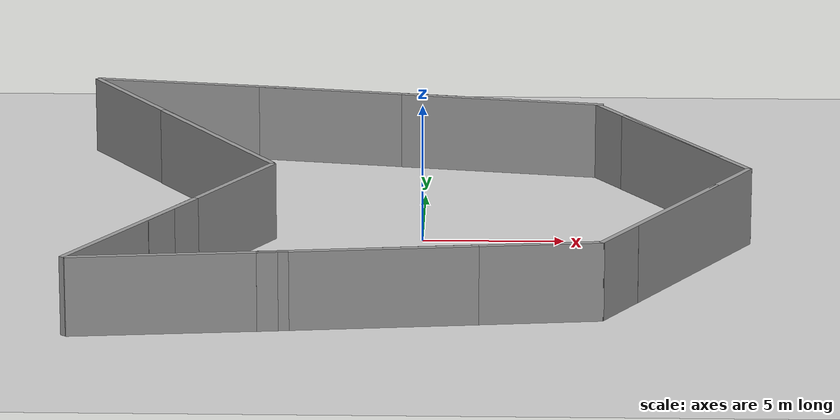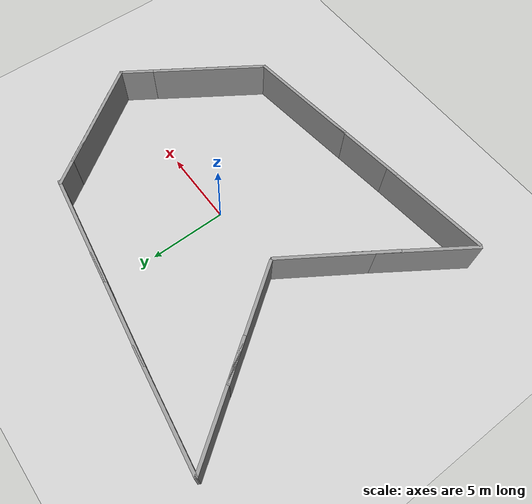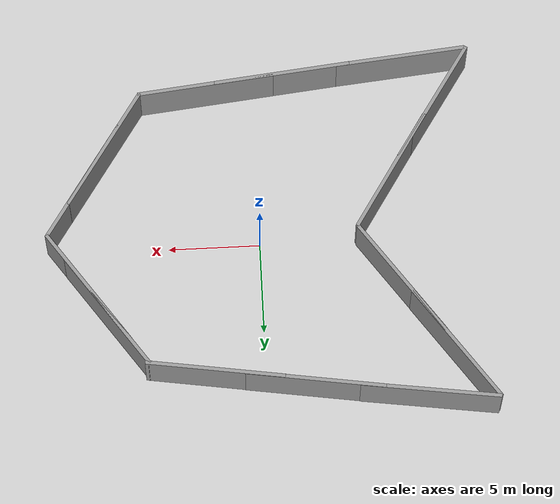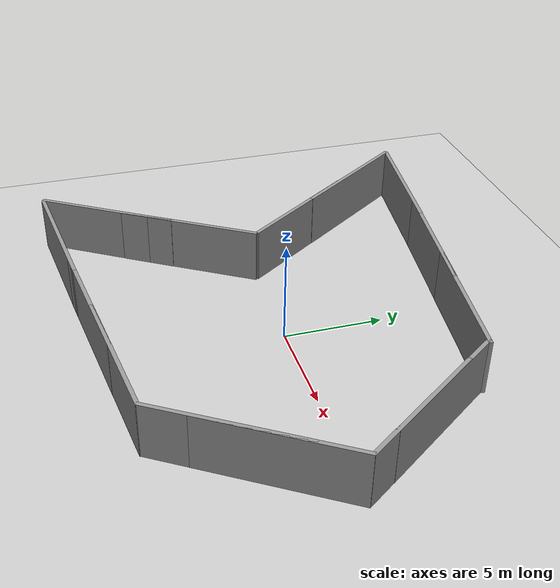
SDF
<sdf version="1.7">
 <world name="default">
  <light name="sun" type="directional">
   <pose>0 0 10 0 -0 0</pose>
   <diffuse>0.8 0.8 0.8 1</diffuse>
   <specular>0.1 0.1 0.1 1</specular>
   <attenuation>
    <range>1000</range>
    <constant>0.9</constant>
    <linear>0.01</linear>
    <quadratic>0.001</quadratic>
   </attenuation>
   <direction>-0.5 0.5 -1</direction>
   <spot><inner_angle>0</inner_angle><outer_angle>0</outer_angle><falloff>0</falloff></spot>
  </light>
  <model name="ground_plane">
   <static>1</static>
   <link name="link">
    <collision name="collision">
     <geometry><plane><normal>0 0 1</normal><size>100 100</size></plane></geometry>
     <surface><friction><ode><mu>100</mu><mu2>50</mu2></ode></friction></surface>
    </collision>
    <visual name="visual">
     <cast_shadows>0</cast_shadows>
     <geometry><plane><normal>0 0 1</normal><size>100 100</size></plane></geometry>
     <material>
      <script><uri>file://media/materials/scripts/gazebo.material</uri><name>Gazebo/Grey</name></script>
     </material>
    </visual>
   </link>
  </model>
  <gravity>0 0 -9.8</gravity>
  <magnetic_field>6e-06 2.3e-05 -4.2e-05</magnetic_field>
  <atmosphere type="adiabatic"/>
  <physics name="default_physics" default="0" type="ode">
   <max_step_size>0.001</max_step_size>
   <real_time_factor>1</real_time_factor>
   <real_time_update_rate>1000</real_time_update_rate>
  </physics>
  <scene><ambient>0.4 0.4 0.4 1</ambient><background>0.7 0.7 0.7 1</background><shadows>1</shadows></scene>
  <spherical_coordinates>
   <surface_model>EARTH_WGS84</surface_model>
   <latitude_deg>0</latitude_deg>
   <longitude_deg>0</longitude_deg>
   <elevation>0</elevation>
   <heading_deg>0</heading_deg>
  </spherical_coordinates>
  <audio><device>default</device></audio>
  <model name="grey_wall">
   <static>1</static>
   <link name="link">
    <pose>0 0 1.4 0 -0 0</pose>
    <collision name="collision"><geometry><box><size>7.5 0.2 2.8</size></box></geometry></collision>
    <visual name="visual">
     <cast_shadows>0</cast_shadows>
     <geometry><box><size>7.5 0.2 2.8</size></box></geometry>
     <material>
      <script>
       <uri>model://grey_wall/materials/scripts</uri>
       <uri>model://grey_wall/materials/textures</uri>
       <name>vrc/grey_wall</name>
      </script>
     </material>
    </visual>
   </link>
   <pose>-7.2846 -3.05113 0 0 0 -2.13758</pose>
  </model>
  <light name="user_directional_light_0" type="directional">
   <pose>-0.01631 -0.003608 1 0 -0 0</pose>
   <diffuse>0.5 0.5 0.5 1</diffuse>
   <specular>0.1 0.1 0.1 1</specular>
   <direction>0.1 0.1 -0.9</direction>
   <attenuation>
    <range>20</range>
    <constant>0.5</constant>
    <linear>0.01</linear>
    <quadratic>0.001</quadratic>
   </attenuation>
   <spot><inner_angle>0</inner_angle><outer_angle>0</outer_angle><falloff>0</falloff></spot>
  </light>
  <light name="user_directional_light_1" type="directional">
   <pose>-2.13122 -0.481727 1 0 -0 0</pose>
   <diffuse>0.5 0.5 0.5 1</diffuse>
   <specular>0.1 0.1 0.1 1</specular>
   <direction>0.1 0.1 -0.9</direction>
   <attenuation>
    <range>20</range>
    <constant>0.5</constant>
    <linear>0.01</linear>
    <quadratic>0.001</quadratic>
   </attenuation>
   <spot><inner_angle>0</inner_angle><outer_angle>0</outer_angle><falloff>0</falloff></spot>
  </light>
  <light name="user_directional_light_1_clone" type="directional">
   <pose>2.53649 1.98303 5.52751 0 -0 0</pose>
   <diffuse>0.5 0.5 0.5 1</diffuse>
   <specular>0.1 0.1 0.1 1</specular>
   <direction>0.109764 0.109764 -0.987878</direction>
   <attenuation>
    <range>20</range>
    <constant>0.5</constant>
    <linear>0.01</linear>
    <quadratic>0.001</quadratic>
   </attenuation>
   <spot><inner_angle>0</inner_angle><outer_angle>0</outer_angle><falloff>0</falloff></spot>
  </light>
  <light name="user_directional_light_1_clone_0" type="directional">
   <pose>-1.34042 13.6927 5.52751 0 -0 0</pose>
   <diffuse>0.5 0.5 0.5 1</diffuse>
   <specular>0.1 0.1 0.1 1</specular>
   <direction>0.109764 0.109764 -0.987878</direction>
   <attenuation>
    <range>20</range>
    <constant>0.5</constant>
    <linear>0.01</linear>
    <quadratic>0.001</quadratic>
   </attenuation>
   <spot><inner_angle>0</inner_angle><outer_angle>0</outer_angle><falloff>0</falloff></spot>
  </light>
  <light name="user_directional_light_1_clone_1" type="directional">
   <pose>1.88153 14.7331 5.52751 0 -0 0</pose>
   <diffuse>0.5 0.5 0.5 1</diffuse>
   <specular>0.1 0.1 0.1 1</specular>
   <direction>0.109764 0.109764 -0.987878</direction>
   <attenuation>
    <range>20</range>
    <constant>0.5</constant>
    <linear>0.01</linear>
    <quadratic>0.001</quadratic>
   </attenuation>
   <spot><inner_angle>0</inner_angle><outer_angle>0</outer_angle><falloff>0</falloff></spot>
  </light>
  <model name="grey_wall_clone">
   <static>1</static>
   <link name="link">
    <pose>0 0 1.4 0 -0 0</pose>
    <collision name="collision"><geometry><box><size>7.5 0.2 2.8</size></box></geometry></collision>
    <visual name="visual">
     <cast_shadows>0</cast_shadows>
     <geometry><box><size>7.5 0.2 2.8</size></box></geometry>
     <material>
      <script>
       <uri>model://grey_wall/materials/scripts</uri>
       <uri>model://grey_wall/materials/textures</uri>
       <name>vrc/grey_wall</name>
      </script>
     </material>
    </visual>
   </link>
   <pose>2.58993 -8.55051 0 0 -0 0.111783</pose>
  </model>
  <model name="grey_wall_clone_0">
   <static>1</static>
   <link name="link">
    <pose>0 0 1.4 0 -0 0</pose>
    <collision name="collision"><geometry><box><size>7.5 0.2 2.8</size></box></geometry></collision>
    <visual name="visual">
     <cast_shadows>0</cast_shadows>
     <geometry><box><size>7.5 0.2 2.8</size></box></geometry>
     <material>
      <script>
       <uri>model://grey_wall/materials/scripts</uri>
       <uri>model://grey_wall/materials/textures</uri>
       <name>vrc/grey_wall</name>
      </script>
     </material>
    </visual>
   </link>
   <pose>-1.63687 -9.02859 0 0 -0 0.111124</pose>
  </model>
  <model name="grey_wall_clone_1">
   <static>1</static>
   <link name="link">
    <pose>0 0 1.4 0 -0 0</pose>
    <collision name="collision"><geometry><box><size>7.5 0.2 2.8</size></box></geometry></collision>
    <visual name="visual">
     <cast_shadows>0</cast_shadows>
     <geometry><box><size>7.5 0.2 2.8</size></box></geometry>
     <material>
      <script>
       <uri>model://grey_wall/materials/scripts</uri>
       <uri>model://grey_wall/materials/textures</uri>
       <name>vrc/grey_wall</name>
      </script>
     </material>
    </visual>
   </link>
   <pose>-8.01767 -9.70889 0 0 -0 0.101822</pose>
  </model>
  <model name="grey_wall_clone_2">
   <static>1</static>
   <link name="link">
    <pose>0 0 1.4 0 -0 0</pose>
    <collision name="collision"><geometry><box><size>7.5 0.2 2.8</size></box></geometry></collision>
    <visual name="visual">
     <cast_shadows>0</cast_shadows>
     <geometry><box><size>7.5 0.2 2.8</size></box></geometry>
     <material>
      <script>
       <uri>model://grey_wall/materials/scripts</uri>
       <uri>model://grey_wall/materials/textures</uri>
       <name>vrc/grey_wall</name>
      </script>
     </material>
    </visual>
   </link>
   <pose>-9.80226 -6.96255 0 0 -0 0.994044</pose>
  </model>
  <model name="grey_wall_clone_2_clone">
   <static>1</static>
   <link name="link">
    <pose>0 0 1.4 0 -0 0</pose>
    <collision name="collision"><geometry><box><size>7.5 0.2 2.8</size></box></geometry></collision>
    <visual name="visual">
     <cast_shadows>0</cast_shadows>
     <geometry><box><size>7.5 0.2 2.8</size></box></geometry>
     <material>
      <script>
       <uri>model://grey_wall/materials/scripts</uri>
       <uri>model://grey_wall/materials/textures</uri>
       <name>vrc/grey_wall</name>
      </script>
     </material>
    </visual>
   </link>
   <pose>8.2611 -5.03888 0 0 -0 0.994044</pose>
  </model>
  <model name="grey_wall_clone_2_clone_0">
   <static>1</static>
   <link name="link">
    <pose>0 0 1.4 0 -0 0</pose>
    <collision name="collision"><geometry><box><size>7.5 0.2 2.8</size></box></geometry></collision>
    <visual name="visual">
     <cast_shadows>0</cast_shadows>
     <geometry><box><size>7.5 0.2 2.8</size></box></geometry>
     <material>
      <script>
       <uri>model://grey_wall/materials/scripts</uri>
       <uri>model://grey_wall/materials/textures</uri>
       <name>vrc/grey_wall</name>
      </script>
     </material>
    </visual>
   </link>
   <pose>9.46756 -3.19044 0 0 -0 0.994044</pose>
  </model>
  <model name="grey_wall_clone_0_clone">
   <static>1</static>
   <link name="link">
    <pose>0 0 1.4 0 -0 0</pose>
    <collision name="collision"><geometry><box><size>7.5 0.2 2.8</size></box></geometry></collision>
    <visual name="visual">
     <cast_shadows>0</cast_shadows>
     <geometry><box><size>7.5 0.2 2.8</size></box></geometry>
     <material>
      <script>
       <uri>model://grey_wall/materials/scripts</uri>
       <uri>model://grey_wall/materials/textures</uri>
       <name>vrc/grey_wall</name>
      </script>
     </material>
    </visual>
   </link>
   <pose>-8.64161 9.57447 0 0 0 -0.137869</pose>
  </model>
  <model name="grey_wall_clone_0_clone_0">
   <static>1</static>
   <link name="link">
    <pose>0 0 1.4 0 -0 0</pose>
    <collision name="collision"><geometry><box><size>7.5 0.2 2.8</size></box></geometry></collision>
    <visual name="visual">
     <cast_shadows>0</cast_shadows>
     <geometry><box><size>7.5 0.2 2.8</size></box></geometry>
     <material>
      <script>
       <uri>model://grey_wall/materials/scripts</uri>
       <uri>model://grey_wall/materials/textures</uri>
       <name>vrc/grey_wall</name>
      </script>
     </material>
    </visual>
   </link>
   <pose>-2.55921 8.68319 -0 0 0 -0.149352</pose>
  </model>
  <model name="grey_wall_clone_0_clone_1">
   <static>1</static>
   <link name="link">
    <pose>0 0 1.4 0 -0 0</pose>
    <collision name="collision"><geometry><box><size>7.5 0.2 2.8</size></box></geometry></collision>
    <visual name="visual">
     <cast_shadows>0</cast_shadows>
     <geometry><box><size>7.5 0.2 2.8</size></box></geometry>
     <material>
      <script>
       <uri>model://grey_wall/materials/scripts</uri>
       <uri>model://grey_wall/materials/textures</uri>
       <name>vrc/grey_wall</name>
      </script>
     </material>
    </visual>
   </link>
   <pose>2.74161 7.87016 0 0 0 -0.149745</pose>
  </model>
  <model name="grey_wall_clone_2_clone_0_clone">
   <static>1</static>
   <link name="link">
    <pose>0 0 1.4 0 -0 0</pose>
    <collision name="collision"><geometry><box><size>7.5 0.2 2.8</size></box></geometry></collision>
    <visual name="visual">
     <cast_shadows>0</cast_shadows>
     <geometry><box><size>7.5 0.2 2.8</size></box></geometry>
     <material>
      <script>
       <uri>model://grey_wall/materials/scripts</uri>
       <uri>model://grey_wall/materials/textures</uri>
       <name>vrc/grey_wall</name>
      </script>
     </material>
    </visual>
   </link>
   <pose>8.35697 4.32975 0 0 0 -0.954714</pose>
  </model>
  <model name="grey_wall_clone_2_clone_0_clone_clone">
   <static>1</static>
   <link name="link">
    <pose>0 0 1.4 0 -0 0</pose>
    <collision name="collision"><geometry><box><size>7.5 0.2 2.8</size></box></geometry></collision>
    <visual name="visual">
     <cast_shadows>0</cast_shadows>
     <geometry><box><size>7.5 0.2 2.8</size></box></geometry>
     <material>
      <script>
       <uri>model://grey_wall/materials/scripts</uri>
       <uri>model://grey_wall/materials/textures</uri>
       <name>vrc/grey_wall</name>
      </script>
     </material>
    </visual>
   </link>
   <pose>9.35004 2.91218 0 0 0 -0.954714</pose>
  </model>
  <model name="grey_wall_clone_2_clone_0_clone_clone_0">
   <static>1</static>
   <link name="link">
    <pose>0 0 1.4 0 -0 0</pose>
    <collision name="collision"><geometry><box><size>7.5 0.2 2.8</size></box></geometry></collision>
    <visual name="visual">
     <cast_shadows>0</cast_shadows>
     <geometry><box><size>7.5 0.2 2.8</size></box></geometry>
     <material>
      <script>
       <uri>model://grey_wall/materials/scripts</uri>
       <uri>model://grey_wall/materials/textures</uri>
       <name>vrc/grey_wall</name>
      </script>
     </material>
    </visual>
   </link>
   <pose>-10.1777 7.03763 0 0 0 -0.954714</pose>
  </model>
  <model name="grey_wall_clone_2_clone_0_clone_clone_clone">
   <static>1</static>
   <link name="link">
    <pose>0 0 1.4 0 -0 0</pose>
    <collision name="collision"><geometry><box><size>7.5 0.2 2.8</size></box></geometry></collision>
    <visual name="visual">
     <cast_shadows>0</cast_shadows>
     <geometry><box><size>7.5 0.2 2.8</size></box></geometry>
     <material>
      <script>
       <uri>model://grey_wall/materials/scripts</uri>
       <uri>model://grey_wall/materials/textures</uri>
       <name>vrc/grey_wall</name>
      </script>
     </material>
    </visual>
   </link>
   <pose>-7.47379 3.19119 0 0 0 -0.954714</pose>
  </model>
  <light name="user_directional_light_2" type="directional">
   <pose>-5.16678 -5.20893 1 0 -0 0</pose>
   <diffuse>0.5 0.5 0.5 1</diffuse>
   <specular>0.1 0.1 0.1 1</specular>
   <direction>0.1 0.1 -0.9</direction>
   <attenuation>
    <range>20</range>
    <constant>0.5</constant>
    <linear>0.01</linear>
    <quadratic>0.001</quadratic>
   </attenuation>
  </light>
 </world>
</sdf>
